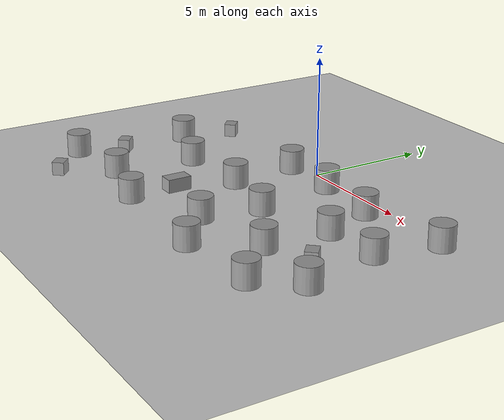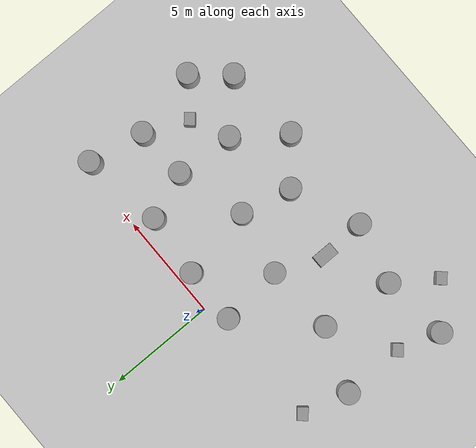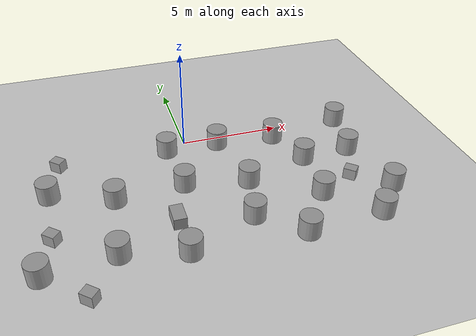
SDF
<sdf version="1.7">
 <world name="default">
  <model name="ground_plane">
   <static>1</static>
   <link name="link">
    <collision name="collision">
     <geometry><plane><normal>0 0 1</normal><size>100 100</size></plane></geometry>
     <surface><friction><ode><mu>100</mu><mu2>50</mu2></ode></friction></surface>
    </collision>
    <visual name="visual">
     <cast_shadows>0</cast_shadows>
     <geometry><plane><normal>0 0 1</normal><size>100 100</size></plane></geometry>
     <material>
      <script><uri>file://media/materials/scripts/gazebo.material</uri><name>Gazebo/Grey</name></script>
     </material>
    </visual>
   </link>
  </model>
  <model name="固定圆柱_clone_0">
   <link name="link">
    <inertial>
     <mass>1</mass>
     <inertia><ixx>0.145833</ixx><ixy>0</ixy><ixz>0</ixz><iyy>0.145833</iyy><iyz>0</iyz><izz>0.125</izz></inertia>
    </inertial>
    <visual name="visual">
     <geometry><cylinder><radius>0.5</radius><length>1</length></cylinder></geometry>
     <material>
      <script><name>Gazebo/Grey</name><uri>file://media/materials/scripts/gazebo.material</uri></script>
      <shader type="pixel"><normal_map>__default__</normal_map></shader>
     </material>
    </visual>
    <collision name="collision">
     <geometry><cylinder><radius>0.5</radius><length>1</length></cylinder></geometry>
     <surface>
      <friction>
       <ode><mu>1</mu><mu2>1</mu2><fdir1>0 0 0</fdir1><slip1>0</slip1><slip2>0</slip2></ode>
       <torsional>
        <coefficient>1</coefficient>
        <patch_radius>0</patch_radius>
        <surface_radius>0</surface_radius>
        <use_patch_radius>1</use_patch_radius>
        <ode><slip>0</slip></ode>
       </torsional>
      </friction>
      <bounce><restitution_coefficient>0</restitution_coefficient><threshold>1e+06</threshold></bounce>
      <contact>
       <collide_without_contact>0</collide_without_contact>
       <collide_without_contact_bitmask>1</collide_without_contact_bitmask>
       <collide_bitmask>1</collide_bitmask>
       <ode>
        <soft_cfm>0</soft_cfm>
        <soft_erp>0.2</soft_erp>
        <kp>1e+13</kp>
        <kd>1</kd>
        <max_vel>0.01</max_vel>
        <min_depth>0</min_depth>
       </ode>
       <bullet>
        <split_impulse>1</split_impulse>
        <split_impulse_penetration_threshold>-0.01</split_impulse_penetration_threshold>
        <soft_cfm>0</soft_cfm>
        <soft_erp>0.2</soft_erp>
        <kp>1e+13</kp>
        <kd>1</kd>
       </bullet>
      </contact>
     </surface>
    </collision>
   </link>
   <static>1</static>
   <pose>-0.799824 -3.4541 0.5 0 -0 0</pose>
  </model>
  <model name="固定圆柱_clone_2">
   <link name="link">
    <inertial>
     <mass>1</mass>
     <inertia><ixx>0.145833</ixx><ixy>0</ixy><ixz>0</ixz><iyy>0.145833</iyy><iyz>0</iyz><izz>0.125</izz></inertia>
    </inertial>
    <visual name="visual">
     <geometry><cylinder><radius>0.5</radius><length>1</length></cylinder></geometry>
     <material>
      <script><name>Gazebo/Grey</name><uri>file://media/materials/scripts/gazebo.material</uri></script>
      <shader type="pixel"><normal_map>__default__</normal_map></shader>
     </material>
    </visual>
    <collision name="collision">
     <geometry><cylinder><radius>0.5</radius><length>1</length></cylinder></geometry>
     <surface>
      <friction>
       <ode><mu>1</mu><mu2>1</mu2><fdir1>0 0 0</fdir1><slip1>0</slip1><slip2>0</slip2></ode>
       <torsional>
        <coefficient>1</coefficient>
        <patch_radius>0</patch_radius>
        <surface_radius>0</surface_radius>
        <use_patch_radius>1</use_patch_radius>
        <ode><slip>0</slip></ode>
       </torsional>
      </friction>
      <bounce><restitution_coefficient>0</restitution_coefficient><threshold>1e+06</threshold></bounce>
      <contact>
       <collide_without_contact>0</collide_without_contact>
       <collide_without_contact_bitmask>1</collide_without_contact_bitmask>
       <collide_bitmask>1</collide_bitmask>
       <ode>
        <soft_cfm>0</soft_cfm>
        <soft_erp>0.2</soft_erp>
        <kp>1e+13</kp>
        <kd>1</kd>
        <max_vel>0.01</max_vel>
        <min_depth>0</min_depth>
       </ode>
       <bullet>
        <split_impulse>1</split_impulse>
        <split_impulse_penetration_threshold>-0.01</split_impulse_penetration_threshold>
        <soft_cfm>0</soft_cfm>
        <soft_erp>0.2</soft_erp>
        <kp>1e+13</kp>
        <kd>1</kd>
       </bullet>
      </contact>
     </surface>
    </collision>
   </link>
   <static>1</static>
   <pose>1.58502 -0.63716 0.5 0 -0 0</pose>
  </model>
  <model name="固定圆柱_clone_4">
   <link name="link">
    <inertial>
     <mass>1</mass>
     <inertia><ixx>0.145833</ixx><ixy>0</ixy><ixz>0</ixz><iyy>0.145833</iyy><iyz>0</iyz><izz>0.125</izz></inertia>
    </inertial>
    <visual name="visual">
     <geometry><cylinder><radius>0.5</radius><length>1</length></cylinder></geometry>
     <material>
      <script><name>Gazebo/Grey</name><uri>file://media/materials/scripts/gazebo.material</uri></script>
      <shader type="pixel"><normal_map>__default__</normal_map></shader>
     </material>
    </visual>
    <collision name="collision">
     <geometry><cylinder><radius>0.5</radius><length>1</length></cylinder></geometry>
     <surface>
      <friction>
       <ode><mu>1</mu><mu2>1</mu2><fdir1>0 0 0</fdir1><slip1>0</slip1><slip2>0</slip2></ode>
       <torsional>
        <coefficient>1</coefficient>
        <patch_radius>0</patch_radius>
        <surface_radius>0</surface_radius>
        <use_patch_radius>1</use_patch_radius>
        <ode><slip>0</slip></ode>
       </torsional>
      </friction>
      <bounce><restitution_coefficient>0</restitution_coefficient><threshold>1e+06</threshold></bounce>
      <contact>
       <collide_without_contact>0</collide_without_contact>
       <collide_without_contact_bitmask>1</collide_without_contact_bitmask>
       <collide_bitmask>1</collide_bitmask>
       <ode>
        <soft_cfm>0</soft_cfm>
        <soft_erp>0.2</soft_erp>
        <kp>1e+13</kp>
        <kd>1</kd>
        <max_vel>0.01</max_vel>
        <min_depth>0</min_depth>
       </ode>
       <bullet>
        <split_impulse>1</split_impulse>
        <split_impulse_penetration_threshold>-0.01</split_impulse_penetration_threshold>
        <soft_cfm>0</soft_cfm>
        <soft_erp>0.2</soft_erp>
        <kp>1e+13</kp>
        <kd>1</kd>
       </bullet>
      </contact>
     </surface>
    </collision>
   </link>
   <static>1</static>
   <pose>5.13074 -5.82469 0.5 0 -0 0</pose>
  </model>
  <model name="固定圆柱_clone_5">
   <link name="link">
    <inertial>
     <mass>1</mass>
     <inertia><ixx>0.145833</ixx><ixy>0</ixy><ixz>0</ixz><iyy>0.145833</iyy><iyz>0</iyz><izz>0.125</izz></inertia>
    </inertial>
    <visual name="visual">
     <geometry><cylinder><radius>0.5</radius><length>1</length></cylinder></geometry>
     <material>
      <script><name>Gazebo/Grey</name><uri>file://media/materials/scripts/gazebo.material</uri></script>
      <shader type="pixel"><normal_map>__default__</normal_map></shader>
     </material>
    </visual>
    <collision name="collision">
     <geometry><cylinder><radius>0.5</radius><length>1</length></cylinder></geometry>
     <surface>
      <friction>
       <ode><mu>1</mu><mu2>1</mu2><fdir1>0 0 0</fdir1><slip1>0</slip1><slip2>0</slip2></ode>
       <torsional>
        <coefficient>1</coefficient>
        <patch_radius>0</patch_radius>
        <surface_radius>0</surface_radius>
        <use_patch_radius>1</use_patch_radius>
        <ode><slip>0</slip></ode>
       </torsional>
      </friction>
      <bounce><restitution_coefficient>0</restitution_coefficient><threshold>1e+06</threshold></bounce>
      <contact>
       <collide_without_contact>0</collide_without_contact>
       <collide_without_contact_bitmask>1</collide_without_contact_bitmask>
       <collide_bitmask>1</collide_bitmask>
       <ode>
        <soft_cfm>0</soft_cfm>
        <soft_erp>0.2</soft_erp>
        <kp>1e+13</kp>
        <kd>1</kd>
        <max_vel>0.01</max_vel>
        <min_depth>0</min_depth>
       </ode>
       <bullet>
        <split_impulse>1</split_impulse>
        <split_impulse_penetration_threshold>-0.01</split_impulse_penetration_threshold>
        <soft_cfm>0</soft_cfm>
        <soft_erp>0.2</soft_erp>
        <kp>1e+13</kp>
        <kd>1</kd>
       </bullet>
      </contact>
     </surface>
    </collision>
   </link>
   <static>1</static>
   <pose>1.6118 -6.41611 0.5 0 -0 0</pose>
  </model>
  <model name="固定圆柱_clone_11">
   <link name="link">
    <inertial>
     <mass>1</mass>
     <inertia><ixx>0.145833</ixx><ixy>0</ixy><ixz>0</ixz><iyy>0.145833</iyy><iyz>0</iyz><izz>0.125</izz></inertia>
    </inertial>
    <visual name="visual">
     <geometry><cylinder><radius>0.5</radius><length>1</length></cylinder></geometry>
     <material>
      <script><name>Gazebo/Grey</name><uri>file://media/materials/scripts/gazebo.material</uri></script>
      <shader type="pixel"><normal_map>__default__</normal_map></shader>
     </material>
    </visual>
    <collision name="collision">
     <geometry><cylinder><radius>0.5</radius><length>1</length></cylinder></geometry>
     <surface>
      <friction>
       <ode><mu>1</mu><mu2>1</mu2><fdir1>0 0 0</fdir1><slip1>0</slip1><slip2>0</slip2></ode>
       <torsional>
        <coefficient>1</coefficient>
        <patch_radius>0</patch_radius>
        <surface_radius>0</surface_radius>
        <use_patch_radius>1</use_patch_radius>
        <ode><slip>0</slip></ode>
       </torsional>
      </friction>
      <bounce><restitution_coefficient>0</restitution_coefficient><threshold>1e+06</threshold></bounce>
      <contact>
       <collide_without_contact>0</collide_without_contact>
       <collide_without_contact_bitmask>1</collide_without_contact_bitmask>
       <collide_bitmask>1</collide_bitmask>
       <ode>
        <soft_cfm>0</soft_cfm>
        <soft_erp>0.2</soft_erp>
        <kp>1e+13</kp>
        <kd>1</kd>
        <max_vel>0.01</max_vel>
        <min_depth>0</min_depth>
       </ode>
       <bullet>
        <split_impulse>1</split_impulse>
        <split_impulse_penetration_threshold>-0.01</split_impulse_penetration_threshold>
        <soft_cfm>0</soft_cfm>
        <soft_erp>0.2</soft_erp>
        <kp>1e+13</kp>
        <kd>1</kd>
       </bullet>
      </contact>
     </surface>
    </collision>
   </link>
   <static>1</static>
   <pose>-6.92949 -2.5396 0.5 0 -0 0</pose>
  </model>
  <model name="固定圆柱_clone_12">
   <link name="link">
    <inertial>
     <mass>1</mass>
     <inertia><ixx>0.145833</ixx><ixy>0</ixy><ixz>0</ixz><iyy>0.145833</iyy><iyz>0</iyz><izz>0.125</izz></inertia>
    </inertial>
    <visual name="visual">
     <geometry><cylinder><radius>0.5</radius><length>1</length></cylinder></geometry>
     <material>
      <script><name>Gazebo/Grey</name><uri>file://media/materials/scripts/gazebo.material</uri></script>
      <shader type="pixel"><normal_map>__default__</normal_map></shader>
     </material>
    </visual>
    <collision name="collision">
     <geometry><cylinder><radius>0.5</radius><length>1</length></cylinder></geometry>
     <surface>
      <friction>
       <ode><mu>1</mu><mu2>1</mu2><fdir1>0 0 0</fdir1><slip1>0</slip1><slip2>0</slip2></ode>
       <torsional>
        <coefficient>1</coefficient>
        <patch_radius>0</patch_radius>
        <surface_radius>0</surface_radius>
        <use_patch_radius>1</use_patch_radius>
        <ode><slip>0</slip></ode>
       </torsional>
      </friction>
      <bounce><restitution_coefficient>0</restitution_coefficient><threshold>1e+06</threshold></bounce>
      <contact>
       <collide_without_contact>0</collide_without_contact>
       <collide_without_contact_bitmask>1</collide_without_contact_bitmask>
       <collide_bitmask>1</collide_bitmask>
       <ode>
        <soft_cfm>0</soft_cfm>
        <soft_erp>0.2</soft_erp>
        <kp>1e+13</kp>
        <kd>1</kd>
        <max_vel>0.01</max_vel>
        <min_depth>0</min_depth>
       </ode>
       <bullet>
        <split_impulse>1</split_impulse>
        <split_impulse_penetration_threshold>-0.01</split_impulse_penetration_threshold>
        <soft_cfm>0</soft_cfm>
        <soft_erp>0.2</soft_erp>
        <kp>1e+13</kp>
        <kd>1</kd>
       </bullet>
      </contact>
     </surface>
    </collision>
   </link>
   <static>1</static>
   <pose>-4.40447 -7.04074 0.5 0 -0 0</pose>
  </model>
  <model name="固定圆柱_clone_14">
   <link name="link">
    <inertial>
     <mass>1</mass>
     <inertia><ixx>0.145833</ixx><ixy>0</ixy><ixz>0</ixz><iyy>0.145833</iyy><iyz>0</iyz><izz>0.125</izz></inertia>
    </inertial>
    <visual name="visual">
     <geometry><cylinder><radius>0.5</radius><length>1</length></cylinder></geometry>
     <material>
      <script><name>Gazebo/Grey</name><uri>file://media/materials/scripts/gazebo.material</uri></script>
      <shader type="pixel"><normal_map>__default__</normal_map></shader>
     </material>
    </visual>
    <collision name="collision">
     <geometry><cylinder><radius>0.5</radius><length>1</length></cylinder></geometry>
     <surface>
      <friction>
       <ode><mu>1</mu><mu2>1</mu2><fdir1>0 0 0</fdir1><slip1>0</slip1><slip2>0</slip2></ode>
       <torsional>
        <coefficient>1</coefficient>
        <patch_radius>0</patch_radius>
        <surface_radius>0</surface_radius>
        <use_patch_radius>1</use_patch_radius>
        <ode><slip>0</slip></ode>
       </torsional>
      </friction>
      <bounce><restitution_coefficient>0</restitution_coefficient><threshold>1e+06</threshold></bounce>
      <contact>
       <collide_without_contact>0</collide_without_contact>
       <collide_without_contact_bitmask>1</collide_without_contact_bitmask>
       <collide_bitmask>1</collide_bitmask>
       <ode>
        <soft_cfm>0</soft_cfm>
        <soft_erp>0.2</soft_erp>
        <kp>1e+13</kp>
        <kd>1</kd>
        <max_vel>0.01</max_vel>
        <min_depth>0</min_depth>
       </ode>
       <bullet>
        <split_impulse>1</split_impulse>
        <split_impulse_penetration_threshold>-0.01</split_impulse_penetration_threshold>
        <soft_cfm>0</soft_cfm>
        <soft_erp>0.2</soft_erp>
        <kp>1e+13</kp>
        <kd>1</kd>
       </bullet>
      </contact>
     </surface>
    </collision>
   </link>
   <static>1</static>
   <pose>3.49034 -8.02959 0.5 0 -0 0</pose>
  </model>
  <model name="固定圆柱_clone_15">
   <link name="link">
    <inertial>
     <mass>1</mass>
     <inertia><ixx>0.145833</ixx><ixy>0</ixy><ixz>0</ixz><iyy>0.145833</iyy><iyz>0</iyz><izz>0.125</izz></inertia>
    </inertial>
    <visual name="visual">
     <geometry><cylinder><radius>0.5</radius><length>1</length></cylinder></geometry>
     <material>
      <script><name>Gazebo/Grey</name><uri>file://media/materials/scripts/gazebo.material</uri></script>
      <shader type="pixel"><normal_map>__default__</normal_map></shader>
     </material>
    </visual>
    <collision name="collision">
     <geometry><cylinder><radius>0.5</radius><length>1</length></cylinder></geometry>
     <surface>
      <friction>
       <ode><mu>1</mu><mu2>1</mu2><fdir1>0 0 0</fdir1><slip1>0</slip1><slip2>0</slip2></ode>
       <torsional>
        <coefficient>1</coefficient>
        <patch_radius>0</patch_radius>
        <surface_radius>0</surface_radius>
        <use_patch_radius>1</use_patch_radius>
        <ode><slip>0</slip></ode>
       </torsional>
      </friction>
      <bounce><restitution_coefficient>0</restitution_coefficient><threshold>1e+06</threshold></bounce>
      <contact>
       <collide_without_contact>0</collide_without_contact>
       <collide_without_contact_bitmask>1</collide_without_contact_bitmask>
       <collide_bitmask>1</collide_bitmask>
       <ode>
        <soft_cfm>0</soft_cfm>
        <soft_erp>0.2</soft_erp>
        <kp>1e+13</kp>
        <kd>1</kd>
        <max_vel>0.01</max_vel>
        <min_depth>0</min_depth>
       </ode>
       <bullet>
        <split_impulse>1</split_impulse>
        <split_impulse_penetration_threshold>-0.01</split_impulse_penetration_threshold>
        <soft_cfm>0</soft_cfm>
        <soft_erp>0.2</soft_erp>
        <kp>1e+13</kp>
        <kd>1</kd>
       </bullet>
      </contact>
     </surface>
    </collision>
   </link>
   <static>1</static>
   <pose>7.76484 -2.98465 0.5 0 -0 0</pose>
  </model>
  <model name="固定圆柱_clone_16">
   <link name="link">
    <inertial>
     <mass>1</mass>
     <inertia><ixx>0.145833</ixx><ixy>0</ixy><ixz>0</ixz><iyy>0.145833</iyy><iyz>0</iyz><izz>0.125</izz></inertia>
    </inertial>
    <visual name="visual">
     <geometry><cylinder><radius>0.5</radius><length>1</length></cylinder></geometry>
     <material>
      <script><name>Gazebo/Grey</name><uri>file://media/materials/scripts/gazebo.material</uri></script>
      <shader type="pixel"><normal_map>__default__</normal_map></shader>
     </material>
    </visual>
    <collision name="collision">
     <geometry><cylinder><radius>0.5</radius><length>1</length></cylinder></geometry>
     <surface>
      <friction>
       <ode><mu>1</mu><mu2>1</mu2><fdir1>0 0 0</fdir1><slip1>0</slip1><slip2>0</slip2></ode>
       <torsional>
        <coefficient>1</coefficient>
        <patch_radius>0</patch_radius>
        <surface_radius>0</surface_radius>
        <use_patch_radius>1</use_patch_radius>
        <ode><slip>0</slip></ode>
       </torsional>
      </friction>
      <bounce><restitution_coefficient>0</restitution_coefficient><threshold>1e+06</threshold></bounce>
      <contact>
       <collide_without_contact>0</collide_without_contact>
       <collide_without_contact_bitmask>1</collide_without_contact_bitmask>
       <collide_bitmask>1</collide_bitmask>
       <ode>
        <soft_cfm>0</soft_cfm>
        <soft_erp>0.2</soft_erp>
        <kp>1e+13</kp>
        <kd>1</kd>
        <max_vel>0.01</max_vel>
        <min_depth>0</min_depth>
       </ode>
       <bullet>
        <split_impulse>1</split_impulse>
        <split_impulse_penetration_threshold>-0.01</split_impulse_penetration_threshold>
        <soft_cfm>0</soft_cfm>
        <soft_erp>0.2</soft_erp>
        <kp>1e+13</kp>
        <kd>1</kd>
       </bullet>
      </contact>
     </surface>
    </collision>
   </link>
   <static>1</static>
   <pose>7.15053 -7.78405 0.5 0 -0 0</pose>
  </model>
  <model name="固定圆柱_clone_17">
   <link name="link">
    <inertial>
     <mass>1</mass>
     <inertia><ixx>0.145833</ixx><ixy>0</ixy><ixz>0</ixz><iyy>0.145833</iyy><iyz>0</iyz><izz>0.125</izz></inertia>
    </inertial>
    <visual name="visual">
     <geometry><cylinder><radius>0.5</radius><length>1</length></cylinder></geometry>
     <material>
      <script><name>Gazebo/Grey</name><uri>file://media/materials/scripts/gazebo.material</uri></script>
      <shader type="pixel"><normal_map>__default__</normal_map></shader>
     </material>
    </visual>
    <collision name="collision">
     <geometry><cylinder><radius>0.5</radius><length>1</length></cylinder></geometry>
     <surface>
      <friction>
       <ode><mu>1</mu><mu2>1</mu2><fdir1>0 0 0</fdir1><slip1>0</slip1><slip2>0</slip2></ode>
       <torsional>
        <coefficient>1</coefficient>
        <patch_radius>0</patch_radius>
        <surface_radius>0</surface_radius>
        <use_patch_radius>1</use_patch_radius>
        <ode><slip>0</slip></ode>
       </torsional>
      </friction>
      <bounce><restitution_coefficient>0</restitution_coefficient><threshold>1e+06</threshold></bounce>
      <contact>
       <collide_without_contact>0</collide_without_contact>
       <collide_without_contact_bitmask>1</collide_without_contact_bitmask>
       <collide_bitmask>1</collide_bitmask>
       <ode>
        <soft_cfm>0</soft_cfm>
        <soft_erp>0.2</soft_erp>
        <kp>1e+13</kp>
        <kd>1</kd>
        <max_vel>0.01</max_vel>
        <min_depth>0</min_depth>
       </ode>
       <bullet>
        <split_impulse>1</split_impulse>
        <split_impulse_penetration_threshold>-0.01</split_impulse_penetration_threshold>
        <soft_cfm>0</soft_cfm>
        <soft_erp>0.2</soft_erp>
        <kp>1e+13</kp>
        <kd>1</kd>
       </bullet>
      </contact>
     </surface>
    </collision>
   </link>
   <static>1</static>
   <pose>-4.05441 -3.6376 0.5 0 -0 0</pose>
  </model>
  <model name="固定圆柱_clone_20">
   <link name="link">
    <inertial>
     <mass>1</mass>
     <inertia><ixx>0.145833</ixx><ixy>0</ixy><ixz>0</ixz><iyy>0.145833</iyy><iyz>0</iyz><izz>0.125</izz></inertia>
    </inertial>
    <visual name="visual">
     <geometry><cylinder><radius>0.5</radius><length>1</length></cylinder></geometry>
     <material>
      <script><name>Gazebo/Grey</name><uri>file://media/materials/scripts/gazebo.material</uri></script>
      <shader type="pixel"><normal_map>__default__</normal_map></shader>
     </material>
    </visual>
    <collision name="collision">
     <geometry><cylinder><radius>0.5</radius><length>1</length></cylinder></geometry>
     <surface>
      <friction>
       <ode><mu>1</mu><mu2>1</mu2><fdir1>0 0 0</fdir1><slip1>0</slip1><slip2>0</slip2></ode>
       <torsional>
        <coefficient>1</coefficient>
        <patch_radius>0</patch_radius>
        <surface_radius>0</surface_radius>
        <use_patch_radius>1</use_patch_radius>
        <ode><slip>0</slip></ode>
       </torsional>
      </friction>
      <bounce><restitution_coefficient>0</restitution_coefficient><threshold>1e+06</threshold></bounce>
      <contact>
       <collide_without_contact>0</collide_without_contact>
       <collide_without_contact_bitmask>1</collide_without_contact_bitmask>
       <collide_bitmask>1</collide_bitmask>
       <ode>
        <soft_cfm>0</soft_cfm>
        <soft_erp>0.2</soft_erp>
        <kp>1e+13</kp>
        <kd>1</kd>
        <max_vel>0.01</max_vel>
        <min_depth>0</min_depth>
       </ode>
       <bullet>
        <split_impulse>1</split_impulse>
        <split_impulse_penetration_threshold>-0.01</split_impulse_penetration_threshold>
        <soft_cfm>0</soft_cfm>
        <soft_erp>0.2</soft_erp>
        <kp>1e+13</kp>
        <kd>1</kd>
       </bullet>
      </contact>
     </surface>
    </collision>
   </link>
   <static>1</static>
   <pose>-7.53586 -7.36179 0.5 0 -0 0</pose>
  </model>
  <model name="固定圆柱_clone_22">
   <link name="link">
    <inertial>
     <mass>1</mass>
     <inertia><ixx>0.145833</ixx><ixy>0</ixy><ixz>0</ixz><iyy>0.145833</iyy><iyz>0</iyz><izz>0.125</izz></inertia>
    </inertial>
    <visual name="visual">
     <geometry><cylinder><radius>0.5</radius><length>1</length></cylinder></geometry>
     <material>
      <script><name>Gazebo/Grey</name><uri>file://media/materials/scripts/gazebo.material</uri></script>
      <shader type="pixel"><normal_map>__default__</normal_map></shader>
     </material>
    </visual>
    <collision name="collision">
     <geometry><cylinder><radius>0.5</radius><length>1</length></cylinder></geometry>
     <surface>
      <friction>
       <ode><mu>1</mu><mu2>1</mu2><fdir1>0 0 0</fdir1><slip1>0</slip1><slip2>0</slip2></ode>
       <torsional>
        <coefficient>1</coefficient>
        <patch_radius>0</patch_radius>
        <surface_radius>0</surface_radius>
        <use_patch_radius>1</use_patch_radius>
        <ode><slip>0</slip></ode>
       </torsional>
      </friction>
      <bounce><restitution_coefficient>0</restitution_coefficient><threshold>1e+06</threshold></bounce>
      <contact>
       <collide_without_contact>0</collide_without_contact>
       <collide_without_contact_bitmask>1</collide_without_contact_bitmask>
       <collide_bitmask>1</collide_bitmask>
       <ode>
        <soft_cfm>0</soft_cfm>
        <soft_erp>0.2</soft_erp>
        <kp>1e+13</kp>
        <kd>1</kd>
        <max_vel>0.01</max_vel>
        <min_depth>0</min_depth>
       </ode>
       <bullet>
        <split_impulse>1</split_impulse>
        <split_impulse_penetration_threshold>-0.01</split_impulse_penetration_threshold>
        <soft_cfm>0</soft_cfm>
        <soft_erp>0.2</soft_erp>
        <kp>1e+13</kp>
        <kd>1</kd>
       </bullet>
      </contact>
     </surface>
    </collision>
   </link>
   <static>1</static>
   <pose>-1.01766 -0.594143 0.5 0 -0 0</pose>
  </model>
  <model name="固定圆柱_clone_23">
   <link name="link">
    <inertial>
     <mass>1</mass>
     <inertia><ixx>0.145833</ixx><ixy>0</ixy><ixz>0</ixz><iyy>0.145833</iyy><iyz>0</iyz><izz>0.125</izz></inertia>
    </inertial>
    <visual name="visual">
     <geometry><cylinder><radius>0.5</radius><length>1</length></cylinder></geometry>
     <material>
      <script><name>Gazebo/Grey</name><uri>file://media/materials/scripts/gazebo.material</uri></script>
      <shader type="pixel"><normal_map>__default__</normal_map></shader>
     </material>
    </visual>
    <collision name="collision">
     <geometry><cylinder><radius>0.5</radius><length>1</length></cylinder></geometry>
     <surface>
      <friction>
       <ode><mu>1</mu><mu2>1</mu2><fdir1>0 0 0</fdir1><slip1>0</slip1><slip2>0</slip2></ode>
       <torsional>
        <coefficient>1</coefficient>
        <patch_radius>0</patch_radius>
        <surface_radius>0</surface_radius>
        <use_patch_radius>1</use_patch_radius>
        <ode><slip>0</slip></ode>
       </torsional>
      </friction>
      <bounce><restitution_coefficient>0</restitution_coefficient><threshold>1e+06</threshold></bounce>
      <contact>
       <collide_without_contact>0</collide_without_contact>
       <collide_without_contact_bitmask>1</collide_without_contact_bitmask>
       <collide_bitmask>1</collide_bitmask>
       <ode>
        <soft_cfm>0</soft_cfm>
        <soft_erp>0.2</soft_erp>
        <kp>1e+13</kp>
        <kd>1</kd>
        <max_vel>0.01</max_vel>
        <min_depth>0</min_depth>
       </ode>
       <bullet>
        <split_impulse>1</split_impulse>
        <split_impulse_penetration_threshold>-0.01</split_impulse_penetration_threshold>
        <soft_cfm>0</soft_cfm>
        <soft_erp>0.2</soft_erp>
        <kp>1e+13</kp>
        <kd>1</kd>
       </bullet>
      </contact>
     </surface>
    </collision>
   </link>
   <static>1</static>
   <pose>4.51502 -0.920717 0.5 0 -0 0</pose>
  </model>
  <model name="固定圆柱_clone_26">
   <link name="link">
    <inertial>
     <mass>1</mass>
     <inertia><ixx>0.145833</ixx><ixy>0</ixy><ixz>0</ixz><iyy>0.145833</iyy><iyz>0</iyz><izz>0.125</izz></inertia>
    </inertial>
    <visual name="visual">
     <geometry><cylinder><radius>0.5</radius><length>1</length></cylinder></geometry>
     <material>
      <script><name>Gazebo/Grey</name><uri>file://media/materials/scripts/gazebo.material</uri></script>
      <shader type="pixel"><normal_map>__default__</normal_map></shader>
     </material>
    </visual>
    <collision name="collision">
     <geometry><cylinder><radius>0.5</radius><length>1</length></cylinder></geometry>
     <surface>
      <friction>
       <ode><mu>1</mu><mu2>1</mu2><fdir1>0 0 0</fdir1><slip1>0</slip1><slip2>0</slip2></ode>
       <torsional>
        <coefficient>1</coefficient>
        <patch_radius>0</patch_radius>
        <surface_radius>0</surface_radius>
        <use_patch_radius>1</use_patch_radius>
        <ode><slip>0</slip></ode>
       </torsional>
      </friction>
      <bounce><restitution_coefficient>0</restitution_coefficient><threshold>1e+06</threshold></bounce>
      <contact>
       <collide_without_contact>0</collide_without_contact>
       <collide_without_contact_bitmask>1</collide_without_contact_bitmask>
       <collide_bitmask>1</collide_bitmask>
       <ode>
        <soft_cfm>0</soft_cfm>
        <soft_erp>0.2</soft_erp>
        <kp>1e+13</kp>
        <kd>1</kd>
        <max_vel>0.01</max_vel>
        <min_depth>0</min_depth>
       </ode>
       <bullet>
        <split_impulse>1</split_impulse>
        <split_impulse_penetration_threshold>-0.01</split_impulse_penetration_threshold>
        <soft_cfm>0</soft_cfm>
        <soft_erp>0.2</soft_erp>
        <kp>1e+13</kp>
        <kd>1</kd>
       </bullet>
      </contact>
     </surface>
    </collision>
   </link>
   <static>1</static>
   <pose>8.28446 -0.360133 0.5 0 -0 0</pose>
  </model>
  <model name="固定圆柱_clone_27">
   <link name="link">
    <inertial>
     <mass>1</mass>
     <inertia><ixx>0.145833</ixx><ixy>0</ixy><ixz>0</ixz><iyy>0.145833</iyy><iyz>0</iyz><izz>0.125</izz></inertia>
    </inertial>
    <visual name="visual">
     <geometry><cylinder><radius>0.5</radius><length>1</length></cylinder></geometry>
     <material>
      <script><name>Gazebo/Grey</name><uri>file://media/materials/scripts/gazebo.material</uri></script>
      <shader type="pixel"><normal_map>__default__</normal_map></shader>
     </material>
    </visual>
    <collision name="collision">
     <geometry><cylinder><radius>0.5</radius><length>1</length></cylinder></geometry>
     <surface>
      <friction>
       <ode><mu>1</mu><mu2>1</mu2><fdir1>0 0 0</fdir1><slip1>0</slip1><slip2>0</slip2></ode>
       <torsional>
        <coefficient>1</coefficient>
        <patch_radius>0</patch_radius>
        <surface_radius>0</surface_radius>
        <use_patch_radius>1</use_patch_radius>
        <ode><slip>0</slip></ode>
       </torsional>
      </friction>
      <bounce><restitution_coefficient>0</restitution_coefficient><threshold>1e+06</threshold></bounce>
      <contact>
       <collide_without_contact>0</collide_without_contact>
       <collide_without_contact_bitmask>1</collide_without_contact_bitmask>
       <collide_bitmask>1</collide_bitmask>
       <ode>
        <soft_cfm>0</soft_cfm>
        <soft_erp>0.2</soft_erp>
        <kp>1e+13</kp>
        <kd>1</kd>
        <max_vel>0.01</max_vel>
        <min_depth>0</min_depth>
       </ode>
       <bullet>
        <split_impulse>1</split_impulse>
        <split_impulse_penetration_threshold>-0.01</split_impulse_penetration_threshold>
        <soft_cfm>0</soft_cfm>
        <soft_erp>0.2</soft_erp>
        <kp>1e+13</kp>
        <kd>1</kd>
       </bullet>
      </contact>
     </surface>
    </collision>
   </link>
   <static>1</static>
   <pose>8.49921 -6.21292 0.5 0 -0 0</pose>
  </model>
  <model name="固定圆柱_clone_28">
   <link name="link">
    <inertial>
     <mass>1</mass>
     <inertia><ixx>0.145833</ixx><ixy>0</ixy><ixz>0</ixz><iyy>0.145833</iyy><iyz>0</iyz><izz>0.125</izz></inertia>
    </inertial>
    <visual name="visual">
     <geometry><cylinder><radius>0.5</radius><length>1</length></cylinder></geometry>
     <material>
      <script><name>Gazebo/Grey</name><uri>file://media/materials/scripts/gazebo.material</uri></script>
      <shader type="pixel"><normal_map>__default__</normal_map></shader>
     </material>
    </visual>
    <collision name="collision">
     <geometry><cylinder><radius>0.5</radius><length>1</length></cylinder></geometry>
     <surface>
      <friction>
       <ode><mu>1</mu><mu2>1</mu2><fdir1>0 0 0</fdir1><slip1>0</slip1><slip2>0</slip2></ode>
       <torsional>
        <coefficient>1</coefficient>
        <patch_radius>0</patch_radius>
        <surface_radius>0</surface_radius>
        <use_patch_radius>1</use_patch_radius>
        <ode><slip>0</slip></ode>
       </torsional>
      </friction>
      <bounce><restitution_coefficient>0</restitution_coefficient><threshold>1e+06</threshold></bounce>
      <contact>
       <collide_without_contact>0</collide_without_contact>
       <collide_without_contact_bitmask>1</collide_without_contact_bitmask>
       <collide_bitmask>1</collide_bitmask>
       <ode>
        <soft_cfm>0</soft_cfm>
        <soft_erp>0.2</soft_erp>
        <kp>1e+13</kp>
        <kd>1</kd>
        <max_vel>0.01</max_vel>
        <min_depth>0</min_depth>
       </ode>
       <bullet>
        <split_impulse>1</split_impulse>
        <split_impulse_penetration_threshold>-0.01</split_impulse_penetration_threshold>
        <soft_cfm>0</soft_cfm>
        <soft_erp>0.2</soft_erp>
        <kp>1e+13</kp>
        <kd>1</kd>
       </bullet>
      </contact>
     </surface>
    </collision>
   </link>
   <static>1</static>
   <pose>-1.58678 -7.74049 0.5 0 -0 0</pose>
  </model>
  <model name="固定圆柱_clone_29">
   <link name="link">
    <inertial>
     <mass>1</mass>
     <inertia><ixx>0.145833</ixx><ixy>0</ixy><ixz>0</ixz><iyy>0.145833</iyy><iyz>0</iyz><izz>0.125</izz></inertia>
    </inertial>
    <visual name="visual">
     <geometry><cylinder><radius>0.5</radius><length>1</length></cylinder></geometry>
     <material>
      <script><name>Gazebo/Grey</name><uri>file://media/materials/scripts/gazebo.material</uri></script>
      <shader type="pixel"><normal_map>__default__</normal_map></shader>
     </material>
    </visual>
    <collision name="collision">
     <geometry><cylinder><radius>0.5</radius><length>1</length></cylinder></geometry>
     <surface>
      <friction>
       <ode><mu>1</mu><mu2>1</mu2><fdir1>0 0 0</fdir1><slip1>0</slip1><slip2>0</slip2></ode>
       <torsional>
        <coefficient>1</coefficient>
        <patch_radius>0</patch_radius>
        <surface_radius>0</surface_radius>
        <use_patch_radius>1</use_patch_radius>
        <ode><slip>0</slip></ode>
       </torsional>
      </friction>
      <bounce><restitution_coefficient>0</restitution_coefficient><threshold>1e+06</threshold></bounce>
      <contact>
       <collide_without_contact>0</collide_without_contact>
       <collide_without_contact_bitmask>1</collide_without_contact_bitmask>
       <collide_bitmask>1</collide_bitmask>
       <ode>
        <soft_cfm>0</soft_cfm>
        <soft_erp>0.2</soft_erp>
        <kp>1e+13</kp>
        <kd>1</kd>
        <max_vel>0.01</max_vel>
        <min_depth>0</min_depth>
       </ode>
       <bullet>
        <split_impulse>1</split_impulse>
        <split_impulse_penetration_threshold>-0.01</split_impulse_penetration_threshold>
        <soft_cfm>0</soft_cfm>
        <soft_erp>0.2</soft_erp>
        <kp>1e+13</kp>
        <kd>1</kd>
       </bullet>
      </contact>
     </surface>
    </collision>
   </link>
   <static>1</static>
   <pose>2.15429 -4.04685 0.5 0 -0 0</pose>
  </model>
  <model name="固定圆柱_clone_30">
   <link name="link">
    <inertial>
     <mass>1</mass>
     <inertia><ixx>0.145833</ixx><ixy>0</ixy><ixz>0</ixz><iyy>0.145833</iyy><iyz>0</iyz><izz>0.125</izz></inertia>
    </inertial>
    <visual name="visual">
     <geometry><cylinder><radius>0.5</radius><length>1</length></cylinder></geometry>
     <material>
      <script><name>Gazebo/Grey</name><uri>file://media/materials/scripts/gazebo.material</uri></script>
      <shader type="pixel"><normal_map>__default__</normal_map></shader>
     </material>
    </visual>
    <collision name="collision">
     <geometry><cylinder><radius>0.5</radius><length>1</length></cylinder></geometry>
     <surface>
      <friction>
       <ode><mu>1</mu><mu2>1</mu2><fdir1>0 0 0</fdir1><slip1>0</slip1><slip2>0</slip2></ode>
       <torsional>
        <coefficient>1</coefficient>
        <patch_radius>0</patch_radius>
        <surface_radius>0</surface_radius>
        <use_patch_radius>1</use_patch_radius>
        <ode><slip>0</slip></ode>
       </torsional>
      </friction>
      <bounce><restitution_coefficient>0</restitution_coefficient><threshold>1e+06</threshold></bounce>
      <contact>
       <collide_without_contact>0</collide_without_contact>
       <collide_without_contact_bitmask>1</collide_without_contact_bitmask>
       <collide_bitmask>1</collide_bitmask>
       <ode>
        <soft_cfm>0</soft_cfm>
        <soft_erp>0.2</soft_erp>
        <kp>1e+13</kp>
        <kd>1</kd>
        <max_vel>0.01</max_vel>
        <min_depth>0</min_depth>
       </ode>
       <bullet>
        <split_impulse>1</split_impulse>
        <split_impulse_penetration_threshold>-0.01</split_impulse_penetration_threshold>
        <soft_cfm>0</soft_cfm>
        <soft_erp>0.2</soft_erp>
        <kp>1e+13</kp>
        <kd>1</kd>
       </bullet>
      </contact>
     </surface>
    </collision>
   </link>
   <static>1</static>
   <pose>5.32866 -3.09954 0.5 0 -0 0</pose>
  </model>
  <model name="固定正方体_0_clone_0">
   <link name="link">
    <inertial>
     <mass>1</mass>
     <inertia>
      <ixx>0.166667</ixx>
      <ixy>0</ixy>
      <ixz>0</ixz>
      <iyy>0.166667</iyy>
      <iyz>0</iyz>
      <izz>0.166667</izz>
     </inertia>
    </inertial>
    <visual name="visual">
     <geometry><box><size>0.599074 1 0.554715</size></box></geometry>
     <material>
      <script><name>Gazebo/Grey</name><uri>file://media/materials/scripts/gazebo.material</uri></script>
      <shader type="pixel"><normal_map>__default__</normal_map></shader>
     </material>
    </visual>
    <collision name="collision">
     <geometry><box><size>0.599074 1 0.554715</size></box></geometry>
     <surface>
      <friction>
       <ode><mu>1</mu><mu2>1</mu2><fdir1>0 0 0</fdir1><slip1>0</slip1><slip2>0</slip2></ode>
       <torsional>
        <coefficient>1</coefficient>
        <patch_radius>0</patch_radius>
        <surface_radius>0</surface_radius>
        <use_patch_radius>1</use_patch_radius>
        <ode><slip>0</slip></ode>
       </torsional>
      </friction>
      <bounce><restitution_coefficient>0</restitution_coefficient><threshold>1e+06</threshold></bounce>
      <contact>
       <collide_without_contact>0</collide_without_contact>
       <collide_without_contact_bitmask>1</collide_without_contact_bitmask>
       <collide_bitmask>1</collide_bitmask>
       <ode>
        <soft_cfm>0</soft_cfm>
        <soft_erp>0.2</soft_erp>
        <kp>1e+13</kp>
        <kd>1</kd>
        <max_vel>0.01</max_vel>
        <min_depth>0</min_depth>
       </ode>
       <bullet>
        <split_impulse>1</split_impulse>
        <split_impulse_penetration_threshold>-0.01</split_impulse_penetration_threshold>
        <soft_cfm>0</soft_cfm>
        <soft_erp>0.2</soft_erp>
        <kp>1e+13</kp>
        <kd>1</kd>
       </bullet>
      </contact>
     </surface>
    </collision>
   </link>
   <static>1</static>
   <pose>-1.65042 -5.70436 0.28063 -1e-05 0 0</pose>
  </model>
  <model name="固定正方体_0_clone_1_clone">
   <link name="link">
    <inertial>
     <mass>1</mass>
     <inertia>
      <ixx>0.166667</ixx>
      <ixy>0</ixy>
      <ixz>0</ixz>
      <iyy>0.166667</iyy>
      <iyz>0</iyz>
      <izz>0.166667</izz>
     </inertia>
    </inertial>
    <visual name="visual">
     <geometry><box><size>0.599074 0.497349 0.554715</size></box></geometry>
     <material>
      <script><name>Gazebo/Grey</name><uri>file://media/materials/scripts/gazebo.material</uri></script>
      <shader type="pixel"><normal_map>__default__</normal_map></shader>
     </material>
    </visual>
    <collision name="collision">
     <geometry><box><size>0.599074 0.497349 0.554715</size></box></geometry>
     <surface>
      <friction>
       <ode><mu>1</mu><mu2>1</mu2><fdir1>0 0 0</fdir1><slip1>0</slip1><slip2>0</slip2></ode>
       <torsional>
        <coefficient>1</coefficient>
        <patch_radius>0</patch_radius>
        <surface_radius>0</surface_radius>
        <use_patch_radius>1</use_patch_radius>
        <ode><slip>0</slip></ode>
       </torsional>
      </friction>
      <bounce><restitution_coefficient>0</restitution_coefficient><threshold>1e+06</threshold></bounce>
      <contact>
       <collide_without_contact>0</collide_without_contact>
       <collide_without_contact_bitmask>1</collide_without_contact_bitmask>
       <collide_bitmask>1</collide_bitmask>
       <ode>
        <soft_cfm>0</soft_cfm>
        <soft_erp>0.2</soft_erp>
        <kp>1e+13</kp>
        <kd>1</kd>
        <max_vel>0.01</max_vel>
        <min_depth>0</min_depth>
       </ode>
       <bullet>
        <split_impulse>1</split_impulse>
        <split_impulse_penetration_threshold>-0.01</split_impulse_penetration_threshold>
        <soft_cfm>0</soft_cfm>
        <soft_erp>0.2</soft_erp>
        <kp>1e+13</kp>
        <kd>1</kd>
       </bullet>
      </contact>
     </surface>
    </collision>
   </link>
   <static>1</static>
   <pose>-6.35404 -0.387521 0.280629 -7e-06 -7e-06 -0.734977</pose>
  </model>
  <model name="固定正方体_0_clone_1_clone_0">
   <link name="link">
    <inertial>
     <mass>1</mass>
     <inertia>
      <ixx>0.166667</ixx>
      <ixy>0</ixy>
      <ixz>0</ixz>
      <iyy>0.166667</iyy>
      <iyz>0</iyz>
      <izz>0.166667</izz>
     </inertia>
    </inertial>
    <visual name="visual">
     <geometry><box><size>0.599074 0.497349 0.554715</size></box></geometry>
     <material>
      <script><name>Gazebo/Grey</name><uri>file://media/materials/scripts/gazebo.material</uri></script>
      <shader type="pixel"><normal_map>__default__</normal_map></shader>
     </material>
    </visual>
    <collision name="collision">
     <geometry><box><size>0.599074 0.497349 0.554715</size></box></geometry>
     <surface>
      <friction>
       <ode><mu>1</mu><mu2>1</mu2><fdir1>0 0 0</fdir1><slip1>0</slip1><slip2>0</slip2></ode>
       <torsional>
        <coefficient>1</coefficient>
        <patch_radius>0</patch_radius>
        <surface_radius>0</surface_radius>
        <use_patch_radius>1</use_patch_radius>
        <ode><slip>0</slip></ode>
       </torsional>
      </friction>
      <bounce><restitution_coefficient>0</restitution_coefficient><threshold>1e+06</threshold></bounce>
      <contact>
       <collide_without_contact>0</collide_without_contact>
       <collide_without_contact_bitmask>1</collide_without_contact_bitmask>
       <collide_bitmask>1</collide_bitmask>
       <ode>
        <soft_cfm>0</soft_cfm>
        <soft_erp>0.2</soft_erp>
        <kp>1e+13</kp>
        <kd>1</kd>
        <max_vel>0.01</max_vel>
        <min_depth>0</min_depth>
       </ode>
       <bullet>
        <split_impulse>1</split_impulse>
        <split_impulse_penetration_threshold>-0.01</split_impulse_penetration_threshold>
        <soft_cfm>0</soft_cfm>
        <soft_erp>0.2</soft_erp>
        <kp>1e+13</kp>
        <kd>1</kd>
       </bullet>
      </contact>
     </surface>
    </collision>
   </link>
   <static>1</static>
   <pose>-6.93209 -5.43117 0.280629 -7e-06 -7e-06 -0.734977</pose>
  </model>
  <model name="固定正方体_0_clone_1_clone_2">
   <link name="link">
    <inertial>
     <mass>1</mass>
     <inertia>
      <ixx>0.166667</ixx>
      <ixy>0</ixy>
      <ixz>0</ixz>
      <iyy>0.166667</iyy>
      <iyz>0</iyz>
      <izz>0.166667</izz>
     </inertia>
    </inertial>
    <visual name="visual">
     <geometry><box><size>0.599074 0.497349 0.554715</size></box></geometry>
     <material>
      <script><name>Gazebo/Grey</name><uri>file://media/materials/scripts/gazebo.material</uri></script>
      <shader type="pixel"><normal_map>__default__</normal_map></shader>
     </material>
    </visual>
    <collision name="collision">
     <geometry><box><size>0.599074 0.497349 0.554715</size></box></geometry>
     <surface>
      <friction>
       <ode><mu>1</mu><mu2>1</mu2><fdir1>0 0 0</fdir1><slip1>0</slip1><slip2>0</slip2></ode>
       <torsional>
        <coefficient>1</coefficient>
        <patch_radius>0</patch_radius>
        <surface_radius>0</surface_radius>
        <use_patch_radius>1</use_patch_radius>
        <ode><slip>0</slip></ode>
       </torsional>
      </friction>
      <bounce><restitution_coefficient>0</restitution_coefficient><threshold>1e+06</threshold></bounce>
      <contact>
       <collide_without_contact>0</collide_without_contact>
       <collide_without_contact_bitmask>1</collide_without_contact_bitmask>
       <collide_bitmask>1</collide_bitmask>
       <ode>
        <soft_cfm>0</soft_cfm>
        <soft_erp>0.2</soft_erp>
        <kp>1e+13</kp>
        <kd>1</kd>
        <max_vel>0.01</max_vel>
        <min_depth>0</min_depth>
       </ode>
       <bullet>
        <split_impulse>1</split_impulse>
        <split_impulse_penetration_threshold>-0.01</split_impulse_penetration_threshold>
        <soft_cfm>0</soft_cfm>
        <soft_erp>0.2</soft_erp>
        <kp>1e+13</kp>
        <kd>1</kd>
       </bullet>
      </contact>
     </surface>
    </collision>
   </link>
   <static>1</static>
   <pose>6.94455 -5.00439 0.280629 -7e-06 -7e-06 -0.734977</pose>
  </model>
  <model name="固定正方体_0_clone_1_clone_3">
   <link name="link">
    <inertial>
     <mass>1</mass>
     <inertia>
      <ixx>0.166667</ixx>
      <ixy>0</ixy>
      <ixz>0</ixz>
      <iyy>0.166667</iyy>
      <iyz>0</iyz>
      <izz>0.166667</izz>
     </inertia>
    </inertial>
    <visual name="visual">
     <geometry><box><size>0.599074 0.497349 0.554715</size></box></geometry>
     <material>
      <script><name>Gazebo/Grey</name><uri>file://media/materials/scripts/gazebo.material</uri></script>
      <shader type="pixel"><normal_map>__default__</normal_map></shader>
     </material>
    </visual>
    <collision name="collision">
     <geometry><box><size>0.599074 0.497349 0.554715</size></box></geometry>
     <surface>
      <friction>
       <ode><mu>1</mu><mu2>1</mu2><fdir1>0 0 0</fdir1><slip1>0</slip1><slip2>0</slip2></ode>
       <torsional>
        <coefficient>1</coefficient>
        <patch_radius>0</patch_radius>
        <surface_radius>0</surface_radius>
        <use_patch_radius>1</use_patch_radius>
        <ode><slip>0</slip></ode>
       </torsional>
      </friction>
      <bounce><restitution_coefficient>0</restitution_coefficient><threshold>1e+06</threshold></bounce>
      <contact>
       <collide_without_contact>0</collide_without_contact>
       <collide_without_contact_bitmask>1</collide_without_contact_bitmask>
       <collide_bitmask>1</collide_bitmask>
       <ode>
        <soft_cfm>0</soft_cfm>
        <soft_erp>0.2</soft_erp>
        <kp>1e+13</kp>
        <kd>1</kd>
        <max_vel>0.01</max_vel>
        <min_depth>0</min_depth>
       </ode>
       <bullet>
        <split_impulse>1</split_impulse>
        <split_impulse_penetration_threshold>-0.01</split_impulse_penetration_threshold>
        <soft_cfm>0</soft_cfm>
        <soft_erp>0.2</soft_erp>
        <kp>1e+13</kp>
        <kd>1</kd>
       </bullet>
      </contact>
     </surface>
    </collision>
   </link>
   <static>1</static>
   <pose>-5.7644 -8.9886 0.280629 -7e-06 -7e-06 -0.734977</pose>
  </model>
 </world>
</sdf>
